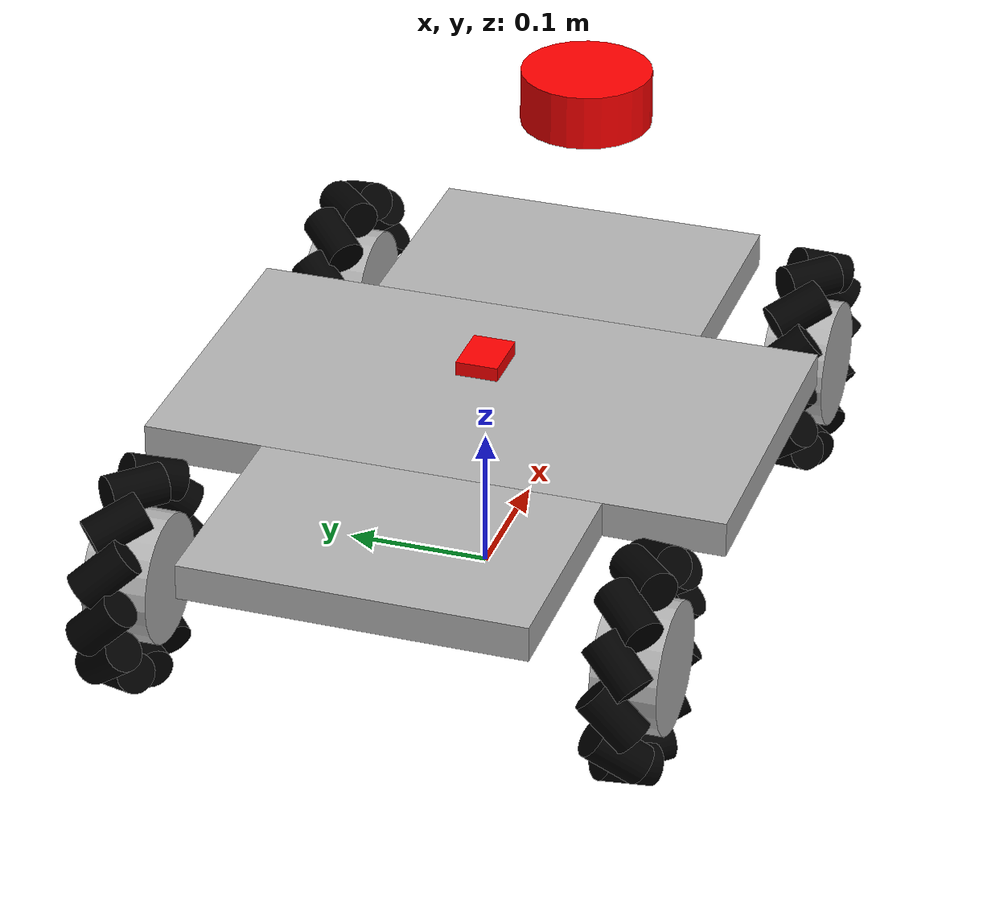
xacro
<?xml version="1.0"?>
<!-- ros2 run xacro xacro urdf/learning.xacro -o /tmp/learning.urdf -->

<robot name="Martha" xmlns:xacro="http://www.ros.org/wiki/xacro">

    <xacro:arg name="robot_namespace" default="" />
    <xacro:arg name="frame_prefix" default="" />
    <xacro:arg name="training_kinematic" default="false" />
    <xacro:arg name="lidar_samples" default="360" />
    <xacro:arg name="lidar_visualize" default="true" />
    <xacro:property name="robot_namespace" value="$(arg robot_namespace)" />
    <xacro:property name="plugin_namespace" value="${'/' + robot_namespace if robot_namespace else '/'}" />
    <xacro:property name="frame_prefix" value="$(arg frame_prefix)" />

    <!--····························································· COLORS ·····························································-->

    <material name="black">
        <color rgba="0 0 0 1" />
    </material>
    <material name="grey">
        <color rgba="0.7 0.7 0.7 1" />
    </material>
    <material name="red">
        <color rgba="1 0 0 1" />
    </material>

    <!--····························································· PROPERTIES ·····························································-->

    <xacro:property name="base_front_x" value="0.160" />
    <xacro:property name="base_center_x" value="0.238" />
    <xacro:property name="base_rear_x" value="0.160" />
    <xacro:property name="base_narrow_y" value="0.240" />
    <xacro:property name="base_center_y" value="0.410" />
    <xacro:property name="base_x" value="${base_front_x + base_center_x + base_rear_x}" />
    <xacro:property name="base_y" value="${base_center_y}" />
    <xacro:property name="base_z" value="0.025" />
    <xacro:property name="height_0" value="0.125" />
    <xacro:property name="height_1" value="0.205" />
    <xacro:property name="height_2" value="0.004" />
    <xacro:property name="height_3" value="0.004" />
    <xacro:property name="wheel_length" value="0.045" />
    <xacro:property name="wheel_radius" value="0.075" />
    <xacro:property name="hub_radius" value="0.045" />
    <xacro:property name="roller_count" value="12" />
    <xacro:property name="roller_radius" value="0.014" />
    <xacro:property name="roller_length" value="0.040" />
    <xacro:property name="roller_mount_radius" value="0.065" />
    <xacro:property name="roller_angle" value="0.785398" />
    <xacro:property name="lidar_length" value="0.04" />
    <xacro:property name="lidar_radius" value="0.0475"/>
    <!-- The detailed wheel/roller envelope reaches |x|=0.289 m.  Keep the
         contact shell 1 mm outside it so wheel-first wall contacts are still
         reported by the base-link bumper sensor. -->
    <xacro:property name="contact_shell_x" value="0.580" />
    <xacro:property name="contact_shell_y" value="0.410" />
    <xacro:property name="contact_shell_center_z" value="0.125" />
    <xacro:property name="contact_shell_height" value="0.200" />
    <xacro:property name="lidar_shell_clearance" value="0.010" />
    <xacro:property name="lidar_front_clearance" value="0.010" />
    <xacro:property name="imu_x" value="0.04" />
    <xacro:property name="imu_y" value="0.03" />
    <xacro:property name="imu_z" value="0.01" />
    <xacro:property name="wheel_pos_x" value="0.21" />
    <xacro:property name="wheel_pos_y" value="0.175" />
    <xacro:property name="wheel_pos_z" value="0.08" />

    <!--····························································· BASE_LINK ·····························································-->
    <link name="base_link">
    <visual>
        <origin xyz="${base_center_x/2 + base_front_x/2} 0 ${height_0}"/>
        <geometry>
        <box size="${base_front_x} ${base_narrow_y} ${base_z}"/>
        </geometry>
        <material name="grey"/>
    </visual>

    <visual>
        <origin xyz="0 0 ${height_0}"/>
        <geometry>
        <box size="${base_center_x} ${base_center_y} ${base_z}"/>
        </geometry>
        <material name="grey"/>
    </visual>

    <visual>
        <origin xyz="${-(base_center_x/2 + base_rear_x/2)} 0 ${height_0}"/>
        <geometry>
        <box size="${base_rear_x} ${base_narrow_y} ${base_z}"/>
        </geometry>
        <material name="grey"/>
    </visual>

    <collision>
        <origin xyz="${base_center_x/2 + base_front_x/2} 0 ${height_0}"/>
        <geometry>
        <box size="${base_front_x} ${base_narrow_y} ${base_z}"/>
        </geometry>
    </collision>

    <!-- Contact-only footprint kept above the floor so normal wheel support
         never becomes a collision terminal. -->
    <collision name="contact_shell_collision">
        <origin xyz="0 0 ${contact_shell_center_z}"/>
        <geometry>
            <box size="${contact_shell_x} ${contact_shell_y} ${contact_shell_height}"/>
        </geometry>
    </collision>

    <collision>
        <origin xyz="0 0 ${height_0}"/>
        <geometry>
        <box size="${base_center_x} ${base_center_y} ${base_z}"/>
        </geometry>
    </collision>

    <collision>
        <origin xyz="${-(base_center_x/2 + base_rear_x/2)} 0 ${height_0}"/>
        <geometry>
        <box size="${base_rear_x} ${base_narrow_y} ${base_z}"/>
        </geometry>
    </collision>

    <inertial>
        <mass value="20"/>
        <inertia ixx="0.1" iyy="0.1" izz="0.1"
                ixy="0" ixz="0" iyz="0"/>
    </inertial>
    </link>

    <!--····························································· LIDAR ·····························································-->

    <link name="lidar">
        <visual>
            <geometry>
                <cylinder length="${lidar_length}" radius="${lidar_radius}"/>
            </geometry>
            <origin xyz="0 0 0" rpy="0 0 0" />
            <material name="red" />
        </visual>

        <collision>
            <geometry>
                <cylinder length="${lidar_length}" radius="${lidar_radius}"/>
            </geometry>
            <origin xyz="0 0 0" rpy="0 0 0" />
        </collision>
        <inertial>
            <mass value="0.1"/>
            <inertia ixx="1e-4" ixy="0.0" ixz="0.0" iyy="1e-4" iyz="0.0" izz="1e-4"/>
        </inertial>

    </link>
    <joint name="base_lidar" type="fixed">
        <parent link="base_link" />
        <child link="lidar" />
        <origin xyz="${contact_shell_x/2 - lidar_radius - lidar_front_clearance} 0 ${contact_shell_center_z + contact_shell_height/2 + lidar_length/2 + lidar_shell_clearance}"/>
    </joint>

    <!--····························································· IMU ·····························································-->

    <link name="imu_link">
        <visual>
            <geometry>
                <box size="${imu_x} ${imu_y} ${imu_z}"/>
            </geometry>
            <origin xyz="0 0 0" rpy="0 0 0" />
            <material name="red" />
        </visual>

        <collision>
            <geometry>
                <box size="${imu_x} ${imu_y} ${imu_z}"/>
            </geometry>
            <origin xyz="0 0 0" rpy="0 0 0" />
        </collision>

        <inertial>
            <mass value="0.01"/>
            <inertia ixx="1e-6" ixy="0.0" ixz="0.0" iyy="1e-6" iyz="0.0" izz="1e-6"/>
        </inertial>
    </link>

    <joint name="base_imu_joint" type="fixed">
        <parent link="base_link" />
        <child link="imu_link" />
        <origin xyz="0 0 ${height_0 + base_z/2 + imu_z/2 + 0.02}" rpy="0 0 0"/>
    </joint>

    <!--····························································· WHEELS ····························································-->

    <xacro:macro name="mecanum_roller" params="wheel_name index x y yaw pitch">
        <link name="${wheel_name}_roller_${index}">
            <visual>
                <geometry>
                    <cylinder length="${roller_length}" radius="${roller_radius}" />
                </geometry>
                <material name="black">
                    <color rgba="0 0 0 1"/>
                </material>
            </visual>

            <collision>
                <geometry>
                    <cylinder length="${roller_length}" radius="${roller_radius}" />
                </geometry>
            </collision>

            <inertial>
                <mass value="0.03"/>
                <inertia ixx="0.00002" ixy="0.0" ixz="0.0" iyy="0.00002" iyz="0.0" izz="0.00001"/>
            </inertial>
        </link>

        <joint name="${wheel_name}_roller_${index}_joint" type="continuous">
            <parent link="${wheel_name}_wheel" />
            <child link="${wheel_name}_roller_${index}" />
            <origin
                xyz="${x} ${y} 0"
                rpy="0 ${pitch} ${yaw}" />
            <axis xyz="0 0 1" />
            <dynamics damping="0.01" friction="0.0" />
        </joint>

        <gazebo reference="${wheel_name}_roller_${index}">
            <material>Gazebo/Black</material>
            <mu1>1.0</mu1>
            <mu2>1.0</mu2>
            <kp>100000.0</kp>
            <kd>1.0</kd>
            <minDepth>0.001</minDepth>
            <maxVel>0.1</maxVel>
        </gazebo>
    </xacro:macro>

    <xacro:macro name="mecanum_wheel" params="name x y z pitch">
        <link name="${name}_wheel">
            <visual>
                <geometry>
                    <cylinder length="${wheel_length}" radius="${hub_radius}" />
                </geometry>
                <origin xyz="0 0 0" rpy="0 0 0" />
                <material name="grey" />
            </visual>

            <collision>
                <geometry>
                    <cylinder length="${wheel_length}" radius="${hub_radius}" />
                </geometry>
                <origin xyz="0 0 0" rpy="0 0 0" />
            </collision>
            <inertial>
                <mass value="0.5"/>
                <inertia ixx="0.01" ixy="0.0" ixz="0.0" iyy="0.01" iyz="0.0" izz="0.01"/>
            </inertial>

        </link>

        <joint name="base_${name}_wheel_joint" type="continuous">
            <parent link="base_link" />
            <child link="${name}_wheel" />
            <origin xyz="${x} ${y} ${z}" rpy="1.57 0 0" />
            <axis xyz="0 0 -1" />
        </joint>

        <xacro:mecanum_roller wheel_name="${name}" index="00" x="${roller_mount_radius}" y="0" yaw="1.570796" pitch="${pitch}" />
        <xacro:mecanum_roller wheel_name="${name}" index="01" x="${roller_mount_radius * 0.866025}" y="${roller_mount_radius * 0.5}" yaw="2.094395" pitch="${pitch}" />
        <xacro:mecanum_roller wheel_name="${name}" index="02" x="${roller_mount_radius * 0.5}" y="${roller_mount_radius * 0.866025}" yaw="2.617994" pitch="${pitch}" />
        <xacro:mecanum_roller wheel_name="${name}" index="03" x="0" y="${roller_mount_radius}" yaw="3.141593" pitch="${pitch}" />
        <xacro:mecanum_roller wheel_name="${name}" index="04" x="${-roller_mount_radius * 0.5}" y="${roller_mount_radius * 0.866025}" yaw="-2.617994" pitch="${pitch}" />
        <xacro:mecanum_roller wheel_name="${name}" index="05" x="${-roller_mount_radius * 0.866025}" y="${roller_mount_radius * 0.5}" yaw="-2.094395" pitch="${pitch}" />
        <xacro:mecanum_roller wheel_name="${name}" index="06" x="${-roller_mount_radius}" y="0" yaw="-1.570796" pitch="${pitch}" />
        <xacro:mecanum_roller wheel_name="${name}" index="07" x="${-roller_mount_radius * 0.866025}" y="${-roller_mount_radius * 0.5}" yaw="-1.047198" pitch="${pitch}" />
        <xacro:mecanum_roller wheel_name="${name}" index="08" x="${-roller_mount_radius * 0.5}" y="${-roller_mount_radius * 0.866025}" yaw="-0.523599" pitch="${pitch}" />
        <xacro:mecanum_roller wheel_name="${name}" index="09" x="0" y="${-roller_mount_radius}" yaw="0" pitch="${pitch}" />
        <xacro:mecanum_roller wheel_name="${name}" index="10" x="${roller_mount_radius * 0.5}" y="${-roller_mount_radius * 0.866025}" yaw="0.523599" pitch="${pitch}" />
        <xacro:mecanum_roller wheel_name="${name}" index="11" x="${roller_mount_radius * 0.866025}" y="${-roller_mount_radius * 0.5}" yaw="1.047198" pitch="${pitch}" />
    </xacro:macro>

    <xacro:macro name="training_wheel" params="name x y z">
        <link name="${name}_wheel">
            <visual>
                <geometry>
                    <cylinder length="${wheel_length}" radius="${wheel_radius}" />
                </geometry>
                <material name="grey" />
            </visual>
            <collision>
                <geometry>
                    <cylinder length="${wheel_length}" radius="${wheel_radius}" />
                </geometry>
            </collision>
            <inertial>
                <mass value="0.5"/>
                <inertia ixx="0.01" ixy="0.0" ixz="0.0" iyy="0.01" iyz="0.0" izz="0.01"/>
            </inertial>
        </link>
        <joint name="base_${name}_wheel_joint" type="fixed">
            <parent link="base_link" />
            <child link="${name}_wheel" />
            <origin xyz="${x} ${y} ${z}" rpy="1.570796 0 0" />
        </joint>
        <gazebo reference="${name}_wheel">
            <material>Gazebo/Black</material>
            <mu1>0.2</mu1>
            <mu2>0.2</mu2>
        </gazebo>
    </xacro:macro>

    <xacro:unless value="$(arg training_kinematic)">
        <xacro:mecanum_wheel name="front_left" x="${wheel_pos_x}" y="${wheel_pos_y}" z="${wheel_pos_z}" pitch="${roller_angle}" />
        <xacro:mecanum_wheel name="front_right" x="${wheel_pos_x}" y="${-wheel_pos_y}" z="${wheel_pos_z}" pitch="${pi - roller_angle}" />
        <xacro:mecanum_wheel name="rear_left" x="${-wheel_pos_x}" y="${wheel_pos_y}" z="${wheel_pos_z}" pitch="${pi - roller_angle}" />
        <xacro:mecanum_wheel name="rear_right" x="${-wheel_pos_x}" y="${-wheel_pos_y}" z="${wheel_pos_z}" pitch="${roller_angle}" />

        <ros2_control name="GazeboSystem_${robot_namespace}" type="system">
            <hardware>
                <plugin>gazebo_ros2_control/GazeboSystem</plugin>
            </hardware>
            <joint name="base_front_right_wheel_joint">
                <command_interface name="velocity"/>
                <state_interface name="velocity"/>
                <state_interface name="position"/>
            </joint>
            <joint name="base_front_left_wheel_joint">
                <command_interface name="velocity"/>
                <state_interface name="velocity"/>
                <state_interface name="position"/>
            </joint>
            <joint name="base_rear_left_wheel_joint">
                <command_interface name="velocity"/>
                <state_interface name="velocity"/>
                <state_interface name="position"/>
            </joint>
            <joint name="base_rear_right_wheel_joint">
                <command_interface name="velocity"/>
                <state_interface name="velocity"/>
                <state_interface name="position"/>
            </joint>
        </ros2_control>

        <gazebo>
            <plugin name="gazebo_ros2_control_${robot_namespace}" filename="libgazebo_ros2_control.so">
                <ros>
                    <argument>--ros-args</argument>
                    <argument>-r</argument>
                    <argument>gazebo_ros2_control_${robot_namespace}:__ns:=${plugin_namespace}</argument>
                </ros>
                <parameters>$(find martha)/config/controllers.yaml</parameters>
            </plugin>
        </gazebo>
    </xacro:unless>

    <xacro:if value="$(arg training_kinematic)">
        <xacro:training_wheel name="front_left" x="${wheel_pos_x}" y="${wheel_pos_y}" z="${wheel_pos_z}" />
        <xacro:training_wheel name="front_right" x="${wheel_pos_x}" y="${-wheel_pos_y}" z="${wheel_pos_z}" />
        <xacro:training_wheel name="rear_left" x="${-wheel_pos_x}" y="${wheel_pos_y}" z="${wheel_pos_z}" />
        <xacro:training_wheel name="rear_right" x="${-wheel_pos_x}" y="${-wheel_pos_y}" z="${wheel_pos_z}" />
        <gazebo>
            <plugin name="gazebo_ros_planar_move_${robot_namespace}" filename="libgazebo_ros_planar_move.so">
                <ros>
                    <argument>--ros-args</argument>
                    <argument>-r</argument>
                    <argument>gazebo_ros_planar_move_${robot_namespace}:__ns:=${plugin_namespace}</argument>
                    <remapping>cmd_vel:=cmd_vel</remapping>
                    <remapping>odom:=mecanum_drive_controller/odometry</remapping>
                </ros>
                <update_rate>100</update_rate>
                <publish_rate>100</publish_rate>
                <publish_odom>true</publish_odom>
                <publish_odom_tf>false</publish_odom_tf>
                <odometry_frame>${frame_prefix}odom</odometry_frame>
                <robot_base_frame>${frame_prefix}base_link</robot_base_frame>
                <covariance_x>0.0001</covariance_x>
                <covariance_y>0.0001</covariance_y>
                <covariance_yaw>0.001</covariance_yaw>
            </plugin>
        </gazebo>
    </xacro:if>

  <gazebo reference="base_link">
    <material>Gazebo/Red</material>
    <sensor name="contact_sensor" type="contact">
      <always_on>true</always_on>
      <update_rate>100</update_rate>
      <contact>
        <!-- gazebo's URDF-to-SDF conversion expands the named base_link
             collision to this stable SDF collision name. -->
        <collision>base_link_fixed_joint_lump__contact_shell_collision_collision_1</collision>
      </contact>
      <plugin name="gazebo_ros_bumper_${robot_namespace}" filename="libgazebo_ros_bumper.so">
        <ros>
          <argument>--ros-args</argument>
          <argument>-r</argument>
          <argument>gazebo_ros_bumper_${robot_namespace}:__ns:=${plugin_namespace}</argument>
          <remapping>bumper_states:=contacts</remapping>
        </ros>
        <frame_name>${frame_prefix}base_link</frame_name>
      </plugin>
    </sensor>
  </gazebo>
  <gazebo reference="front_left_wheel">
  	<material>Gazebo/Black</material>
  </gazebo>
  <gazebo reference="front_right_wheel">
  	<material>Gazebo/Black</material>
  </gazebo>
  <gazebo reference="rear_left_wheel">
  	<material>Gazebo/Black</material>
  </gazebo>
  <gazebo reference="rear_right_wheel">
  	<material>Gazebo/Black</material>
  </gazebo>
  <gazebo reference="imu_link">
    <material>Gazebo/Red</material>
    <sensor name="imu_sensor" type="imu">
      <always_on>true</always_on>
      <visualize>false</visualize>
      <update_rate>100</update_rate>
      <imu>
        <angular_velocity>
          <x>
            <noise type="gaussian">
              <mean>0.0</mean>
              <stddev>0.002</stddev>
            </noise>
          </x>
          <y>
            <noise type="gaussian">
              <mean>0.0</mean>
              <stddev>0.002</stddev>
            </noise>
          </y>
          <z>
            <noise type="gaussian">
              <mean>0.0</mean>
              <stddev>0.002</stddev>
            </noise>
          </z>
        </angular_velocity>
        <linear_acceleration>
          <x>
            <noise type="gaussian">
              <mean>0.0</mean>
              <stddev>0.02</stddev>
            </noise>
          </x>
          <y>
            <noise type="gaussian">
              <mean>0.0</mean>
              <stddev>0.02</stddev>
            </noise>
          </y>
          <z>
            <noise type="gaussian">
              <mean>0.0</mean>
              <stddev>0.02</stddev>
            </noise>
          </z>
        </linear_acceleration>
      </imu>
      <plugin name="gazebo_ros_imu_${robot_namespace}" filename="libgazebo_ros_imu_sensor.so">
        <ros>
          <argument>--ros-args</argument>
          <argument>-r</argument>
          <argument>gazebo_ros_imu_${robot_namespace}:__ns:=${plugin_namespace}</argument>
          <remapping>~/out:=imu/data</remapping>
        </ros>
        <frame_name>${frame_prefix}imu_link</frame_name>
        <initial_orientation_as_reference>false</initial_orientation_as_reference>
      </plugin>
    </sensor>
  </gazebo>
  <gazebo reference="lidar">
  	<material>Gazebo/Green</material>
    <sensor name="lidar_sensor" type="ray">
      <always_on>true</always_on>
      <visualize>$(arg lidar_visualize)</visualize>
      <update_rate>10</update_rate>
      <ray>
        <scan>
          <horizontal>
            <samples>$(arg lidar_samples)</samples>
            <resolution>1</resolution>
            <min_angle>${-pi}</min_angle>
            <max_angle>${pi}</max_angle>
          </horizontal>
        </scan>
        <range>
          <min>0.12</min>
          <max>8.0</max>
          <resolution>0.01</resolution>
        </range>
        <noise>
          <type>gaussian</type>
          <mean>0.0</mean>
          <stddev>0.01</stddev>
        </noise>
      </ray>
      <plugin name="gazebo_ros_lidar_${robot_namespace}" filename="libgazebo_ros_ray_sensor.so">
        <ros>
          <argument>--ros-args</argument>
          <argument>-r</argument>
          <argument>gazebo_ros_lidar_${robot_namespace}:__ns:=${plugin_namespace}</argument>
          <remapping>~/out:=scan</remapping>
        </ros>
        <output_type>sensor_msgs/LaserScan</output_type>
        <frame_name>${frame_prefix}lidar</frame_name>
      </plugin>
    </sensor>
  </gazebo>

</robot>
